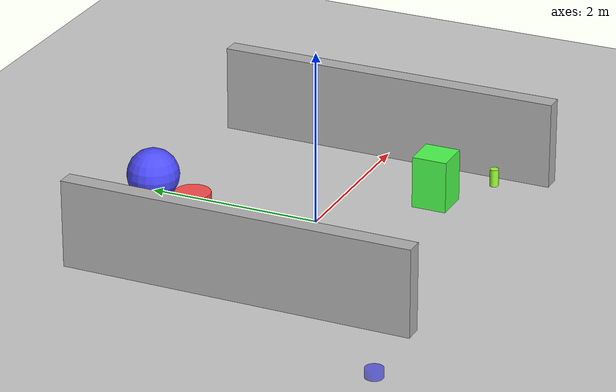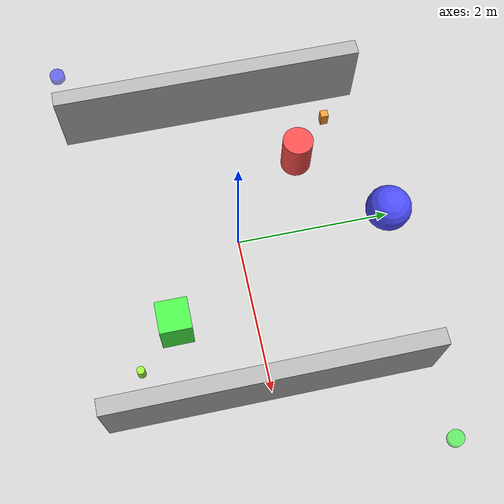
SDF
<sdf version="1.6">
 <world name="full_system_test_world">
  <include><uri>model://sun</uri></include>
  <include><uri>model://ground_plane</uri></include>
  <model name="test_wall_1">
   <pose>-2 0 0.5 0 0 0</pose>
   <link name="wall_link">
    <visual name="visual">
     <geometry><box><size>0.2 4 1</size></box></geometry>
     <material><ambient>0.5 0.5 0.5 1</ambient><diffuse>0.7 0.7 0.7 1</diffuse></material>
    </visual>
    <collision name="collision"><geometry><box><size>0.2 4 1</size></box></geometry></collision>
    <inertial>
     <mass>100.0</mass>
     <inertia><ixx>13.33</ixx><ixy>0</ixy><ixz>0</ixz><iyy>16.67</iyy><iyz>0</iyz><izz>3.33</izz></inertia>
    </inertial>
   </link>
  </model>
  <model name="test_wall_2">
   <pose>2 0 0.5 0 0 0</pose>
   <link name="wall_link">
    <visual name="visual">
     <geometry><box><size>0.2 4 1</size></box></geometry>
     <material><ambient>0.5 0.5 0.5 1</ambient><diffuse>0.7 0.7 0.7 1</diffuse></material>
    </visual>
    <collision name="collision"><geometry><box><size>0.2 4 1</size></box></geometry></collision>
    <inertial>
     <mass>100.0</mass>
     <inertia><ixx>13.33</ixx><ixy>0</ixy><ixz>0</ixz><iyy>16.67</iyy><iyz>0</iyz><izz>3.33</izz></inertia>
    </inertial>
   </link>
  </model>
  <model name="obstacle_1">
   <pose>-1 1 0.3 0 0 0</pose>
   <link name="link">
    <visual name="visual">
     <geometry><cylinder><radius>0.2</radius><length>0.6</length></cylinder></geometry>
     <material><ambient>0.8 0.2 0.2 1</ambient><diffuse>1.0 0.3 0.3 1</diffuse></material>
    </visual>
    <collision name="collision">
     <geometry><cylinder><radius>0.2</radius><length>0.6</length></cylinder></geometry>
    </collision>
    <inertial>
     <mass>5.0</mass>
     <inertia><ixx>0.125</ixx><ixy>0</ixy><ixz>0</ixz><iyy>0.125</iyy><iyz>0</iyz><izz>0.1</izz></inertia>
    </inertial>
   </link>
  </model>
  <model name="obstacle_2">
   <pose>1 -1 0.3 0 0 0</pose>
   <link name="link">
    <visual name="visual">
     <geometry><box><size>0.4 0.4 0.6</size></box></geometry>
     <material><ambient>0.2 0.8 0.2 1</ambient><diffuse>0.3 1.0 0.3 1</diffuse></material>
    </visual>
    <collision name="collision"><geometry><box><size>0.4 0.4 0.6</size></box></geometry></collision>
    <inertial>
     <mass>5.0</mass>
     <inertia><ixx>0.117</ixx><ixy>0</ixy><ixz>0</ixz><iyy>0.117</iyy><iyz>0</iyz><izz>0.133</izz></inertia>
    </inertial>
   </link>
  </model>
  <model name="obstacle_3">
   <pose>0 2 0.2 0 0 0.5</pose>
   <link name="link">
    <visual name="visual">
     <geometry><sphere><radius>0.3</radius></sphere></geometry>
     <material><ambient>0.2 0.2 0.8 1</ambient><diffuse>0.3 0.3 1.0 1</diffuse></material>
    </visual>
    <collision name="collision"><geometry><sphere><radius>0.3</radius></sphere></geometry></collision>
    <inertial>
     <mass>5.0</mass>
     <inertia><ixx>0.18</ixx><ixy>0</ixy><ixz>0</ixz><iyy>0.18</iyy><iyz>0</iyz><izz>0.18</izz></inertia>
    </inertial>
   </link>
  </model>
  <model name="test_object_1">
   <pose>-1.5 1.5 0.2 0 0 0</pose>
   <link name="link">
    <visual name="visual">
     <geometry><box><size>0.1 0.1 0.2</size></box></geometry>
     <material><ambient>1 0.5 0 1</ambient><diffuse>1 0.6 0.2 1</diffuse></material>
    </visual>
    <collision name="collision"><geometry><box><size>0.1 0.1 0.2</size></box></geometry></collision>
    <inertial>
     <mass>0.5</mass>
     <inertia><ixx>0.0012</ixx><ixy>0</ixy><ixz>0</ixz><iyy>0.0012</iyy><iyz>0</iyz><izz>0.0008</izz></inertia>
    </inertial>
   </link>
  </model>
  <model name="test_object_2">
   <pose>1.5 -1.5 0.2 0 0 0</pose>
   <link name="link">
    <visual name="visual">
     <geometry><cylinder><radius>0.05</radius><length>0.2</length></cylinder></geometry>
     <material><ambient>0.5 1 0 1</ambient><diffuse>0.6 1 0.2 1</diffuse></material>
    </visual>
    <collision name="collision">
     <geometry><cylinder><radius>0.05</radius><length>0.2</length></cylinder></geometry>
    </collision>
    <inertial>
     <mass>0.3</mass>
     <inertia><ixx>0.0004</ixx><ixy>0</ixy><ixz>0</ixz><iyy>0.0004</iyy><iyz>0</iyz><izz>0.0001</izz></inertia>
    </inertial>
   </link>
  </model>
  <model name="goal_marker_1">
   <pose>3 2 0.05 0 0 0</pose>
   <static>true</static>
   <link name="link">
    <visual name="visual">
     <geometry><cylinder><radius>0.1</radius><length>0.1</length></cylinder></geometry>
     <material><ambient>0 1 0 0.5</ambient><diffuse>0 1 0 0.5</diffuse></material>
    </visual>
    <collision name="collision">
     <geometry><cylinder><radius>0.1</radius><length>0.1</length></cylinder></geometry>
    </collision>
   </link>
  </model>
  <model name="goal_marker_2">
   <pose>-3 -2 0.05 0 0 0</pose>
   <static>true</static>
   <link name="link">
    <visual name="visual">
     <geometry><cylinder><radius>0.1</radius><length>0.1</length></cylinder></geometry>
     <material><ambient>0 0 1 0.5</ambient><diffuse>0 0 1 0.5</diffuse></material>
    </visual>
    <collision name="collision">
     <geometry><cylinder><radius>0.1</radius><length>0.1</length></cylinder></geometry>
    </collision>
   </link>
  </model>
  <light name="key_light" type="directional">
   <pose>0 0 10 0 0 0</pose>
   <diffuse>0.8 0.8 0.8 1</diffuse>
   <specular>0.2 0.2 0.2 1</specular>
   <attenuation>
    <range>1000</range>
    <constant>0.9</constant>
    <linear>0.01</linear>
    <quadratic>0.001</quadratic>
   </attenuation>
   <direction>-0.3 -0.3 -0.9</direction>
  </light>
  <physics name="1ms" type="ode">
   <max_step_size>0.001</max_step_size>
   <real_time_factor>1</real_time_factor>
   <real_time_update_rate>1000</real_time_update_rate>
   <gravity>0 0 -9.8</gravity>
  </physics>
 </world>
</sdf>
